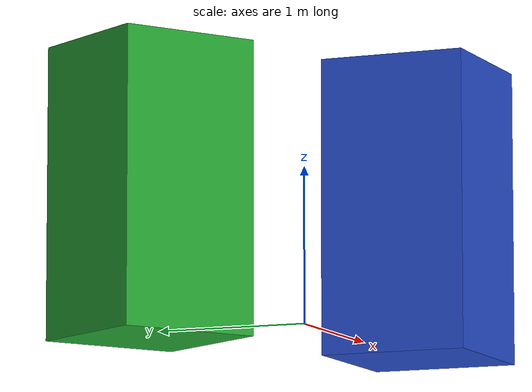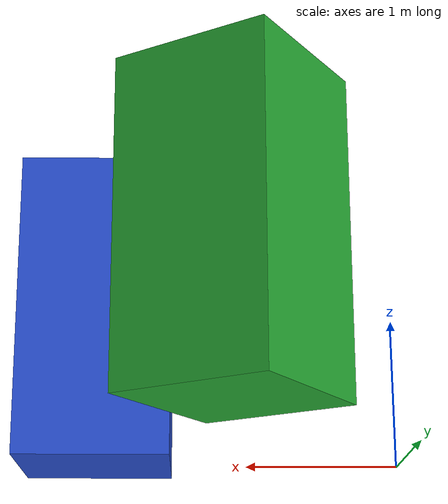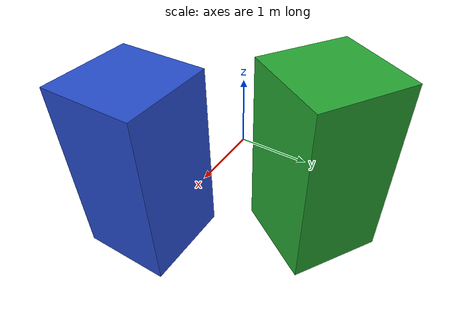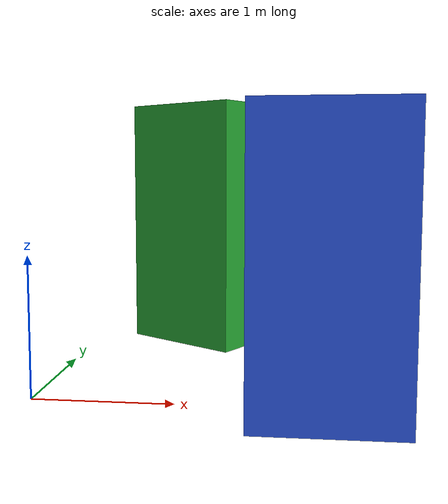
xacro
<robot name="simple_box">

  <link name="my_box">
    <inertial>
      <origin
        xyz="0.082699 -0.15 0"
        rpy="0 0 0" />
      <mass value="1.0" />
      <inertia  ixx="1.0" ixy="0.0"  ixz="0.0"  iyy="100.0"  iyz="0.0"  izz="1.0" />
    </inertial>
    <visual>
      <origin xyz="2 0 1"/>
      <geometry>
        <box size="1 1 2" />
      </geometry>
    </visual>
    <collision>
      <origin xyz="2 0 1"/>
      <geometry>
        <box size="1 1 2" />
      </geometry>
    </collision>
  </link>

<link name="my_box1">
    <inertial>
      <origin xyz="10 0 0" />
      <mass value="1.0" />
      <inertia  ixx="1.0" ixy="0.0"  ixz="0.0"  iyy="100.0"  iyz="0.0"  izz="1.0" />
    </inertial>
    <visual>
      <origin xyz="2 0 1"/>
      <geometry>
        <box size="1 1 2" />
      </geometry>
    </visual>
    <collision>
      <origin xyz="2 0 1"/>
      <geometry>
        <box size="1 1 2" />
      </geometry>
    </collision>
  </link>

  <gazebo reference="my_box">
    <material>Gazebo/Blue</material>
  </gazebo>

<joint
    name="left_wheel1_joint"
    type="fixed">
    <origin
      xyz="0.04 -0.10 0.12"
      rpy="0 0 1" />
    <parent
      link="my_box" />
    <child
      link="my_box1" />
    <axis
      xyz="0 0 1" />
</joint>
<gazebo reference="my_box1">
    <material>Gazebo/Green</material>
  </gazebo>
</robot>
